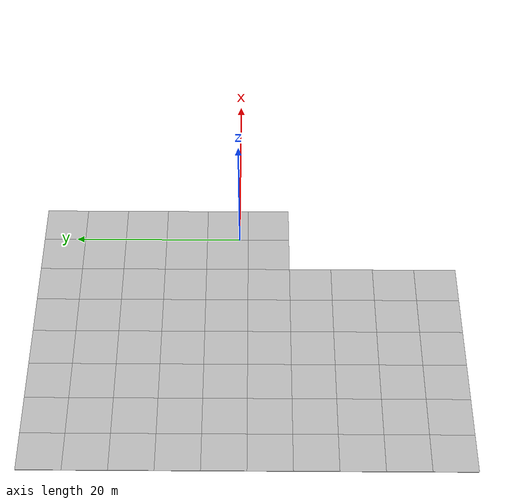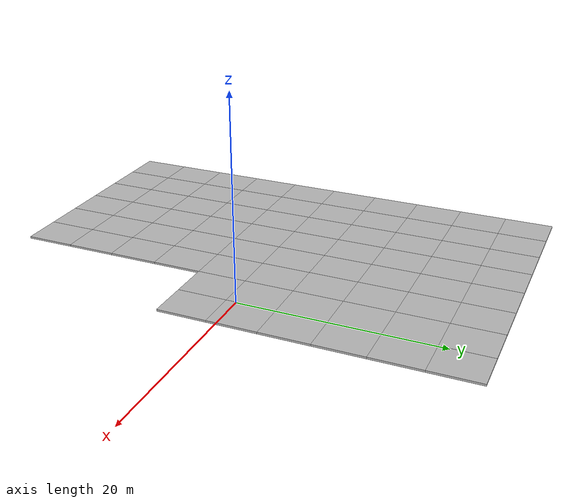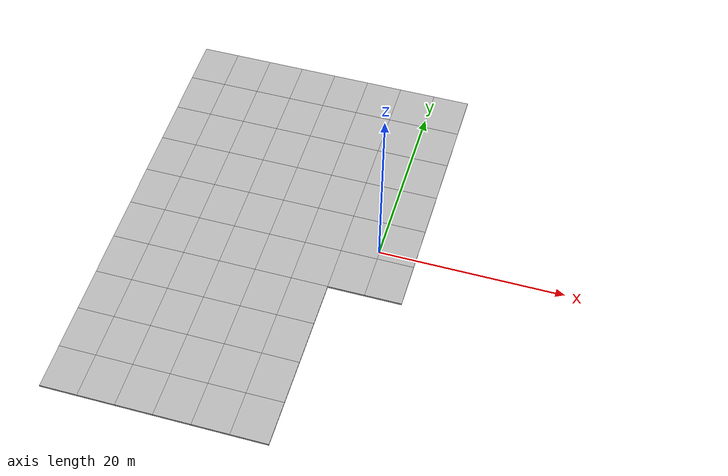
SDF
<sdf version="1.6">
 <world name="default">
  <model name="mud_box">
   <static>1</static>
   <link name="link">
    <collision name="collision"><geometry><box><size>8 10 0.2</size></box></geometry></collision>
    <visual name="visual_1">
     <pose>-2 2.5 0 0 -0 0</pose>
     <cast_shadows>0</cast_shadows>
     <geometry><box><size>4 5 0.2</size></box></geometry>
     <material>
      <script>
       <uri>model://mud_box/materials/scripts</uri>
       <uri>model://mud_box/materials/textures</uri>
       <name>vrc/mud</name>
      </script>
     </material>
    </visual>
    <visual name="visual_2">
     <pose>2 2.5 0 0 -0 0</pose>
     <cast_shadows>0</cast_shadows>
     <geometry><box><size>4 5 0.2</size></box></geometry>
     <material>
      <script>
       <uri>model://mud_box/materials/scripts</uri>
       <uri>model://mud_box/materials/textures</uri>
       <name>vrc/mud</name>
      </script>
     </material>
    </visual>
    <visual name="visual_3">
     <pose>2 -2.5 0 0 -0 0</pose>
     <cast_shadows>0</cast_shadows>
     <geometry><box><size>4 5 0.2</size></box></geometry>
     <material>
      <script>
       <uri>model://mud_box/materials/scripts</uri>
       <uri>model://mud_box/materials/textures</uri>
       <name>vrc/mud</name>
      </script>
     </material>
    </visual>
    <visual name="visual_4">
     <pose>-2 -2.5 0 0 -0 0</pose>
     <cast_shadows>0</cast_shadows>
     <geometry><box><size>4 5 0.2</size></box></geometry>
     <material>
      <script>
       <uri>model://mud_box/materials/scripts</uri>
       <uri>model://mud_box/materials/textures</uri>
       <name>vrc/mud</name>
      </script>
     </material>
    </visual>
   </link>
   <pose>0 19 0 0 -0 0</pose>
  </model>
  <model name="mud_box_clone">
   <static>1</static>
   <link name="link">
    <collision name="collision"><geometry><box><size>8 10 0.2</size></box></geometry></collision>
    <visual name="visual_1">
     <pose>-2 2.5 0 0 -0 0</pose>
     <cast_shadows>0</cast_shadows>
     <geometry><box><size>4 5 0.2</size></box></geometry>
     <material>
      <script>
       <uri>model://mud_box/materials/scripts</uri>
       <uri>model://mud_box/materials/textures</uri>
       <name>vrc/mud</name>
      </script>
     </material>
    </visual>
    <visual name="visual_2">
     <pose>2 2.5 0 0 -0 0</pose>
     <cast_shadows>0</cast_shadows>
     <geometry><box><size>4 5 0.2</size></box></geometry>
     <material>
      <script>
       <uri>model://mud_box/materials/scripts</uri>
       <uri>model://mud_box/materials/textures</uri>
       <name>vrc/mud</name>
      </script>
     </material>
    </visual>
    <visual name="visual_3">
     <pose>2 -2.5 0 0 -0 0</pose>
     <cast_shadows>0</cast_shadows>
     <geometry><box><size>4 5 0.2</size></box></geometry>
     <material>
      <script>
       <uri>model://mud_box/materials/scripts</uri>
       <uri>model://mud_box/materials/textures</uri>
       <name>vrc/mud</name>
      </script>
     </material>
    </visual>
    <visual name="visual_4">
     <pose>-2 -2.5 0 0 -0 0</pose>
     <cast_shadows>0</cast_shadows>
     <geometry><box><size>4 5 0.2</size></box></geometry>
     <material>
      <script>
       <uri>model://mud_box/materials/scripts</uri>
       <uri>model://mud_box/materials/textures</uri>
       <name>vrc/mud</name>
      </script>
     </material>
    </visual>
   </link>
   <pose>-8 19 0 0 -0 0</pose>
  </model>
  <model name="mud_box_clone_0">
   <static>1</static>
   <link name="link">
    <collision name="collision"><geometry><box><size>8 10 0.2</size></box></geometry></collision>
    <visual name="visual_1">
     <pose>-2 2.5 0 0 -0 0</pose>
     <cast_shadows>0</cast_shadows>
     <geometry><box><size>4 5 0.2</size></box></geometry>
     <material>
      <script>
       <uri>model://mud_box/materials/scripts</uri>
       <uri>model://mud_box/materials/textures</uri>
       <name>vrc/mud</name>
      </script>
     </material>
    </visual>
    <visual name="visual_2">
     <pose>2 2.5 0 0 -0 0</pose>
     <cast_shadows>0</cast_shadows>
     <geometry><box><size>4 5 0.2</size></box></geometry>
     <material>
      <script>
       <uri>model://mud_box/materials/scripts</uri>
       <uri>model://mud_box/materials/textures</uri>
       <name>vrc/mud</name>
      </script>
     </material>
    </visual>
    <visual name="visual_3">
     <pose>2 -2.5 0 0 -0 0</pose>
     <cast_shadows>0</cast_shadows>
     <geometry><box><size>4 5 0.2</size></box></geometry>
     <material>
      <script>
       <uri>model://mud_box/materials/scripts</uri>
       <uri>model://mud_box/materials/textures</uri>
       <name>vrc/mud</name>
      </script>
     </material>
    </visual>
    <visual name="visual_4">
     <pose>-2 -2.5 0 0 -0 0</pose>
     <cast_shadows>0</cast_shadows>
     <geometry><box><size>4 5 0.2</size></box></geometry>
     <material>
      <script>
       <uri>model://mud_box/materials/scripts</uri>
       <uri>model://mud_box/materials/textures</uri>
       <name>vrc/mud</name>
      </script>
     </material>
    </visual>
   </link>
   <pose>-16 19 0 0 -0 0</pose>
  </model>
  <model name="mud_box_clone_4">
   <static>1</static>
   <link name="link">
    <collision name="collision"><geometry><box><size>8 10 0.2</size></box></geometry></collision>
    <visual name="visual_1">
     <pose>-2 2.5 0 0 -0 0</pose>
     <cast_shadows>0</cast_shadows>
     <geometry><box><size>4 5 0.2</size></box></geometry>
     <material>
      <script>
       <uri>model://mud_box/materials/scripts</uri>
       <uri>model://mud_box/materials/textures</uri>
       <name>vrc/mud</name>
      </script>
     </material>
    </visual>
    <visual name="visual_2">
     <pose>2 2.5 0 0 -0 0</pose>
     <cast_shadows>0</cast_shadows>
     <geometry><box><size>4 5 0.2</size></box></geometry>
     <material>
      <script>
       <uri>model://mud_box/materials/scripts</uri>
       <uri>model://mud_box/materials/textures</uri>
       <name>vrc/mud</name>
      </script>
     </material>
    </visual>
    <visual name="visual_3">
     <pose>2 -2.5 0 0 -0 0</pose>
     <cast_shadows>0</cast_shadows>
     <geometry><box><size>4 5 0.2</size></box></geometry>
     <material>
      <script>
       <uri>model://mud_box/materials/scripts</uri>
       <uri>model://mud_box/materials/textures</uri>
       <name>vrc/mud</name>
      </script>
     </material>
    </visual>
    <visual name="visual_4">
     <pose>-2 -2.5 0 0 -0 0</pose>
     <cast_shadows>0</cast_shadows>
     <geometry><box><size>4 5 0.2</size></box></geometry>
     <material>
      <script>
       <uri>model://mud_box/materials/scripts</uri>
       <uri>model://mud_box/materials/textures</uri>
       <name>vrc/mud</name>
      </script>
     </material>
    </visual>
   </link>
   <pose>-24 19 0 0 -0 0</pose>
  </model>
  <model name="mud_box_clone_3_clone_2">
   <static>1</static>
   <link name="link">
    <collision name="collision"><geometry><box><size>8 10 0.2</size></box></geometry></collision>
    <visual name="visual_1">
     <pose>-2 2.5 0 0 -0 0</pose>
     <cast_shadows>0</cast_shadows>
     <geometry><box><size>4 5 0.2</size></box></geometry>
     <material>
      <script>
       <uri>model://mud_box/materials/scripts</uri>
       <uri>model://mud_box/materials/textures</uri>
       <name>vrc/mud</name>
      </script>
     </material>
    </visual>
    <visual name="visual_2">
     <pose>2 2.5 0 0 -0 0</pose>
     <cast_shadows>0</cast_shadows>
     <geometry><box><size>4 5 0.2</size></box></geometry>
     <material>
      <script>
       <uri>model://mud_box/materials/scripts</uri>
       <uri>model://mud_box/materials/textures</uri>
       <name>vrc/mud</name>
      </script>
     </material>
    </visual>
    <visual name="visual_3">
     <pose>2 -2.5 0 0 -0 0</pose>
     <cast_shadows>0</cast_shadows>
     <geometry><box><size>4 5 0.2</size></box></geometry>
     <material>
      <script>
       <uri>model://mud_box/materials/scripts</uri>
       <uri>model://mud_box/materials/textures</uri>
       <name>vrc/mud</name>
      </script>
     </material>
    </visual>
    <visual name="visual_4">
     <pose>-2 -2.5 0 0 -0 0</pose>
     <cast_shadows>0</cast_shadows>
     <geometry><box><size>4 5 0.2</size></box></geometry>
     <material>
      <script>
       <uri>model://mud_box/materials/scripts</uri>
       <uri>model://mud_box/materials/textures</uri>
       <name>vrc/mud</name>
      </script>
     </material>
    </visual>
   </link>
   <pose>0 9 0 0 -0 0</pose>
  </model>
  <model name="mud_box_clone_3_clone_3">
   <static>1</static>
   <link name="link">
    <collision name="collision"><geometry><box><size>8 10 0.2</size></box></geometry></collision>
    <visual name="visual_1">
     <pose>-2 2.5 0 0 -0 0</pose>
     <cast_shadows>0</cast_shadows>
     <geometry><box><size>4 5 0.2</size></box></geometry>
     <material>
      <script>
       <uri>model://mud_box/materials/scripts</uri>
       <uri>model://mud_box/materials/textures</uri>
       <name>vrc/mud</name>
      </script>
     </material>
    </visual>
    <visual name="visual_2">
     <pose>2 2.5 0 0 -0 0</pose>
     <cast_shadows>0</cast_shadows>
     <geometry><box><size>4 5 0.2</size></box></geometry>
     <material>
      <script>
       <uri>model://mud_box/materials/scripts</uri>
       <uri>model://mud_box/materials/textures</uri>
       <name>vrc/mud</name>
      </script>
     </material>
    </visual>
    <visual name="visual_3">
     <pose>2 -2.5 0 0 -0 0</pose>
     <cast_shadows>0</cast_shadows>
     <geometry><box><size>4 5 0.2</size></box></geometry>
     <material>
      <script>
       <uri>model://mud_box/materials/scripts</uri>
       <uri>model://mud_box/materials/textures</uri>
       <name>vrc/mud</name>
      </script>
     </material>
    </visual>
    <visual name="visual_4">
     <pose>-2 -2.5 0 0 -0 0</pose>
     <cast_shadows>0</cast_shadows>
     <geometry><box><size>4 5 0.2</size></box></geometry>
     <material>
      <script>
       <uri>model://mud_box/materials/scripts</uri>
       <uri>model://mud_box/materials/textures</uri>
       <name>vrc/mud</name>
      </script>
     </material>
    </visual>
   </link>
   <pose>-8 9 0 0 -0 0</pose>
  </model>
  <model name="mud_box_clone_3_clone_4">
   <static>1</static>
   <link name="link">
    <collision name="collision"><geometry><box><size>8 10 0.2</size></box></geometry></collision>
    <visual name="visual_1">
     <pose>-2 2.5 0 0 -0 0</pose>
     <cast_shadows>0</cast_shadows>
     <geometry><box><size>4 5 0.2</size></box></geometry>
     <material>
      <script>
       <uri>model://mud_box/materials/scripts</uri>
       <uri>model://mud_box/materials/textures</uri>
       <name>vrc/mud</name>
      </script>
     </material>
    </visual>
    <visual name="visual_2">
     <pose>2 2.5 0 0 -0 0</pose>
     <cast_shadows>0</cast_shadows>
     <geometry><box><size>4 5 0.2</size></box></geometry>
     <material>
      <script>
       <uri>model://mud_box/materials/scripts</uri>
       <uri>model://mud_box/materials/textures</uri>
       <name>vrc/mud</name>
      </script>
     </material>
    </visual>
    <visual name="visual_3">
     <pose>2 -2.5 0 0 -0 0</pose>
     <cast_shadows>0</cast_shadows>
     <geometry><box><size>4 5 0.2</size></box></geometry>
     <material>
      <script>
       <uri>model://mud_box/materials/scripts</uri>
       <uri>model://mud_box/materials/textures</uri>
       <name>vrc/mud</name>
      </script>
     </material>
    </visual>
    <visual name="visual_4">
     <pose>-2 -2.5 0 0 -0 0</pose>
     <cast_shadows>0</cast_shadows>
     <geometry><box><size>4 5 0.2</size></box></geometry>
     <material>
      <script>
       <uri>model://mud_box/materials/scripts</uri>
       <uri>model://mud_box/materials/textures</uri>
       <name>vrc/mud</name>
      </script>
     </material>
    </visual>
   </link>
   <pose>-16 9 0 0 -0 0</pose>
  </model>
  <model name="mud_box_clone_3_clone_5">
   <static>1</static>
   <link name="link">
    <collision name="collision"><geometry><box><size>8 10 0.2</size></box></geometry></collision>
    <visual name="visual_1">
     <pose>-2 2.5 0 0 -0 0</pose>
     <cast_shadows>0</cast_shadows>
     <geometry><box><size>4 5 0.2</size></box></geometry>
     <material>
      <script>
       <uri>model://mud_box/materials/scripts</uri>
       <uri>model://mud_box/materials/textures</uri>
       <name>vrc/mud</name>
      </script>
     </material>
    </visual>
    <visual name="visual_2">
     <pose>2 2.5 0 0 -0 0</pose>
     <cast_shadows>0</cast_shadows>
     <geometry><box><size>4 5 0.2</size></box></geometry>
     <material>
      <script>
       <uri>model://mud_box/materials/scripts</uri>
       <uri>model://mud_box/materials/textures</uri>
       <name>vrc/mud</name>
      </script>
     </material>
    </visual>
    <visual name="visual_3">
     <pose>2 -2.5 0 0 -0 0</pose>
     <cast_shadows>0</cast_shadows>
     <geometry><box><size>4 5 0.2</size></box></geometry>
     <material>
      <script>
       <uri>model://mud_box/materials/scripts</uri>
       <uri>model://mud_box/materials/textures</uri>
       <name>vrc/mud</name>
      </script>
     </material>
    </visual>
    <visual name="visual_4">
     <pose>-2 -2.5 0 0 -0 0</pose>
     <cast_shadows>0</cast_shadows>
     <geometry><box><size>4 5 0.2</size></box></geometry>
     <material>
      <script>
       <uri>model://mud_box/materials/scripts</uri>
       <uri>model://mud_box/materials/textures</uri>
       <name>vrc/mud</name>
      </script>
     </material>
    </visual>
   </link>
   <pose>-24 9 0 0 -0 0</pose>
  </model>
  <model name="mud_box_clone_3_clone_2_clone">
   <static>1</static>
   <link name="link">
    <collision name="collision"><geometry><box><size>8 10 0.2</size></box></geometry></collision>
    <visual name="visual_1">
     <pose>-2 2.5 0 0 -0 0</pose>
     <cast_shadows>0</cast_shadows>
     <geometry><box><size>4 5 0.2</size></box></geometry>
     <material>
      <script>
       <uri>model://mud_box/materials/scripts</uri>
       <uri>model://mud_box/materials/textures</uri>
       <name>vrc/mud</name>
      </script>
     </material>
    </visual>
    <visual name="visual_2">
     <pose>2 2.5 0 0 -0 0</pose>
     <cast_shadows>0</cast_shadows>
     <geometry><box><size>4 5 0.2</size></box></geometry>
     <material>
      <script>
       <uri>model://mud_box/materials/scripts</uri>
       <uri>model://mud_box/materials/textures</uri>
       <name>vrc/mud</name>
      </script>
     </material>
    </visual>
    <visual name="visual_3">
     <pose>2 -2.5 0 0 -0 0</pose>
     <cast_shadows>0</cast_shadows>
     <geometry><box><size>4 5 0.2</size></box></geometry>
     <material>
      <script>
       <uri>model://mud_box/materials/scripts</uri>
       <uri>model://mud_box/materials/textures</uri>
       <name>vrc/mud</name>
      </script>
     </material>
    </visual>
    <visual name="visual_4">
     <pose>-2 -2.5 0 0 -0 0</pose>
     <cast_shadows>0</cast_shadows>
     <geometry><box><size>4 5 0.2</size></box></geometry>
     <material>
      <script>
       <uri>model://mud_box/materials/scripts</uri>
       <uri>model://mud_box/materials/textures</uri>
       <name>vrc/mud</name>
      </script>
     </material>
    </visual>
   </link>
   <pose>0 -1 0 0 -0 0</pose>
  </model>
  <model name="mud_box_clone_3_clone_2_clone_0">
   <static>1</static>
   <link name="link">
    <collision name="collision"><geometry><box><size>8 10 0.2</size></box></geometry></collision>
    <visual name="visual_1">
     <pose>-2 2.5 0 0 -0 0</pose>
     <cast_shadows>0</cast_shadows>
     <geometry><box><size>4 5 0.2</size></box></geometry>
     <material>
      <script>
       <uri>model://mud_box/materials/scripts</uri>
       <uri>model://mud_box/materials/textures</uri>
       <name>vrc/mud</name>
      </script>
     </material>
    </visual>
    <visual name="visual_2">
     <pose>2 2.5 0 0 -0 0</pose>
     <cast_shadows>0</cast_shadows>
     <geometry><box><size>4 5 0.2</size></box></geometry>
     <material>
      <script>
       <uri>model://mud_box/materials/scripts</uri>
       <uri>model://mud_box/materials/textures</uri>
       <name>vrc/mud</name>
      </script>
     </material>
    </visual>
    <visual name="visual_3">
     <pose>2 -2.5 0 0 -0 0</pose>
     <cast_shadows>0</cast_shadows>
     <geometry><box><size>4 5 0.2</size></box></geometry>
     <material>
      <script>
       <uri>model://mud_box/materials/scripts</uri>
       <uri>model://mud_box/materials/textures</uri>
       <name>vrc/mud</name>
      </script>
     </material>
    </visual>
    <visual name="visual_4">
     <pose>-2 -2.5 0 0 -0 0</pose>
     <cast_shadows>0</cast_shadows>
     <geometry><box><size>4 5 0.2</size></box></geometry>
     <material>
      <script>
       <uri>model://mud_box/materials/scripts</uri>
       <uri>model://mud_box/materials/textures</uri>
       <name>vrc/mud</name>
      </script>
     </material>
    </visual>
   </link>
   <pose>-8 -1 0 0 -0 0</pose>
  </model>
  <model name="mud_box_clone_3_clone_2_clone_1">
   <static>1</static>
   <link name="link">
    <collision name="collision"><geometry><box><size>8 10 0.2</size></box></geometry></collision>
    <visual name="visual_1">
     <pose>-2 2.5 0 0 -0 0</pose>
     <cast_shadows>0</cast_shadows>
     <geometry><box><size>4 5 0.2</size></box></geometry>
     <material>
      <script>
       <uri>model://mud_box/materials/scripts</uri>
       <uri>model://mud_box/materials/textures</uri>
       <name>vrc/mud</name>
      </script>
     </material>
    </visual>
    <visual name="visual_2">
     <pose>2 2.5 0 0 -0 0</pose>
     <cast_shadows>0</cast_shadows>
     <geometry><box><size>4 5 0.2</size></box></geometry>
     <material>
      <script>
       <uri>model://mud_box/materials/scripts</uri>
       <uri>model://mud_box/materials/textures</uri>
       <name>vrc/mud</name>
      </script>
     </material>
    </visual>
    <visual name="visual_3">
     <pose>2 -2.5 0 0 -0 0</pose>
     <cast_shadows>0</cast_shadows>
     <geometry><box><size>4 5 0.2</size></box></geometry>
     <material>
      <script>
       <uri>model://mud_box/materials/scripts</uri>
       <uri>model://mud_box/materials/textures</uri>
       <name>vrc/mud</name>
      </script>
     </material>
    </visual>
    <visual name="visual_4">
     <pose>-2 -2.5 0 0 -0 0</pose>
     <cast_shadows>0</cast_shadows>
     <geometry><box><size>4 5 0.2</size></box></geometry>
     <material>
      <script>
       <uri>model://mud_box/materials/scripts</uri>
       <uri>model://mud_box/materials/textures</uri>
       <name>vrc/mud</name>
      </script>
     </material>
    </visual>
   </link>
   <pose>-16 -1 0 0 -0 0</pose>
  </model>
  <model name="mud_box_clone_3_clone_2_clone_3">
   <static>1</static>
   <link name="link">
    <collision name="collision"><geometry><box><size>8 10 0.2</size></box></geometry></collision>
    <visual name="visual_1">
     <pose>-2 2.5 0 0 -0 0</pose>
     <cast_shadows>0</cast_shadows>
     <geometry><box><size>4 5 0.2</size></box></geometry>
     <material>
      <script>
       <uri>model://mud_box/materials/scripts</uri>
       <uri>model://mud_box/materials/textures</uri>
       <name>vrc/mud</name>
      </script>
     </material>
    </visual>
    <visual name="visual_2">
     <pose>2 2.5 0 0 -0 0</pose>
     <cast_shadows>0</cast_shadows>
     <geometry><box><size>4 5 0.2</size></box></geometry>
     <material>
      <script>
       <uri>model://mud_box/materials/scripts</uri>
       <uri>model://mud_box/materials/textures</uri>
       <name>vrc/mud</name>
      </script>
     </material>
    </visual>
    <visual name="visual_3">
     <pose>2 -2.5 0 0 -0 0</pose>
     <cast_shadows>0</cast_shadows>
     <geometry><box><size>4 5 0.2</size></box></geometry>
     <material>
      <script>
       <uri>model://mud_box/materials/scripts</uri>
       <uri>model://mud_box/materials/textures</uri>
       <name>vrc/mud</name>
      </script>
     </material>
    </visual>
    <visual name="visual_4">
     <pose>-2 -2.5 0 0 -0 0</pose>
     <cast_shadows>0</cast_shadows>
     <geometry><box><size>4 5 0.2</size></box></geometry>
     <material>
      <script>
       <uri>model://mud_box/materials/scripts</uri>
       <uri>model://mud_box/materials/textures</uri>
       <name>vrc/mud</name>
      </script>
     </material>
    </visual>
   </link>
   <pose>-24 -1 0 0 -0 0</pose>
  </model>
  <model name="mud_box_clone_3_clone_2_clone_clone_0">
   <static>1</static>
   <link name="link">
    <collision name="collision"><geometry><box><size>8 10 0.2</size></box></geometry></collision>
    <visual name="visual_1">
     <pose>-2 2.5 0 0 -0 0</pose>
     <cast_shadows>0</cast_shadows>
     <geometry><box><size>4 5 0.2</size></box></geometry>
     <material>
      <script>
       <uri>model://mud_box/materials/scripts</uri>
       <uri>model://mud_box/materials/textures</uri>
       <name>vrc/mud</name>
      </script>
     </material>
    </visual>
    <visual name="visual_2">
     <pose>2 2.5 0 0 -0 0</pose>
     <cast_shadows>0</cast_shadows>
     <geometry><box><size>4 5 0.2</size></box></geometry>
     <material>
      <script>
       <uri>model://mud_box/materials/scripts</uri>
       <uri>model://mud_box/materials/textures</uri>
       <name>vrc/mud</name>
      </script>
     </material>
    </visual>
    <visual name="visual_3">
     <pose>2 -2.5 0 0 -0 0</pose>
     <cast_shadows>0</cast_shadows>
     <geometry><box><size>4 5 0.2</size></box></geometry>
     <material>
      <script>
       <uri>model://mud_box/materials/scripts</uri>
       <uri>model://mud_box/materials/textures</uri>
       <name>vrc/mud</name>
      </script>
     </material>
    </visual>
    <visual name="visual_4">
     <pose>-2 -2.5 0 0 -0 0</pose>
     <cast_shadows>0</cast_shadows>
     <geometry><box><size>4 5 0.2</size></box></geometry>
     <material>
      <script>
       <uri>model://mud_box/materials/scripts</uri>
       <uri>model://mud_box/materials/textures</uri>
       <name>vrc/mud</name>
      </script>
     </material>
    </visual>
   </link>
   <pose>-8 -11 0 0 -0 0</pose>
  </model>
  <model name="mud_box_clone_3_clone_2_clone_clone_2">
   <static>1</static>
   <link name="link">
    <collision name="collision"><geometry><box><size>8 10 0.2</size></box></geometry></collision>
    <visual name="visual_1">
     <pose>-2 2.5 0 0 -0 0</pose>
     <cast_shadows>0</cast_shadows>
     <geometry><box><size>4 5 0.2</size></box></geometry>
     <material>
      <script>
       <uri>model://mud_box/materials/scripts</uri>
       <uri>model://mud_box/materials/textures</uri>
       <name>vrc/mud</name>
      </script>
     </material>
    </visual>
    <visual name="visual_2">
     <pose>2 2.5 0 0 -0 0</pose>
     <cast_shadows>0</cast_shadows>
     <geometry><box><size>4 5 0.2</size></box></geometry>
     <material>
      <script>
       <uri>model://mud_box/materials/scripts</uri>
       <uri>model://mud_box/materials/textures</uri>
       <name>vrc/mud</name>
      </script>
     </material>
    </visual>
    <visual name="visual_3">
     <pose>2 -2.5 0 0 -0 0</pose>
     <cast_shadows>0</cast_shadows>
     <geometry><box><size>4 5 0.2</size></box></geometry>
     <material>
      <script>
       <uri>model://mud_box/materials/scripts</uri>
       <uri>model://mud_box/materials/textures</uri>
       <name>vrc/mud</name>
      </script>
     </material>
    </visual>
    <visual name="visual_4">
     <pose>-2 -2.5 0 0 -0 0</pose>
     <cast_shadows>0</cast_shadows>
     <geometry><box><size>4 5 0.2</size></box></geometry>
     <material>
      <script>
       <uri>model://mud_box/materials/scripts</uri>
       <uri>model://mud_box/materials/textures</uri>
       <name>vrc/mud</name>
      </script>
     </material>
    </visual>
   </link>
   <pose>-8 -21 0 0 -0 0</pose>
  </model>
  <model name="mud_box_clone_3_clone_2_clone_clone_3">
   <static>1</static>
   <link name="link">
    <collision name="collision"><geometry><box><size>8 10 0.2</size></box></geometry></collision>
    <visual name="visual_1">
     <pose>-2 2.5 0 0 -0 0</pose>
     <cast_shadows>0</cast_shadows>
     <geometry><box><size>4 5 0.2</size></box></geometry>
     <material>
      <script>
       <uri>model://mud_box/materials/scripts</uri>
       <uri>model://mud_box/materials/textures</uri>
       <name>vrc/mud</name>
      </script>
     </material>
    </visual>
    <visual name="visual_2">
     <pose>2 2.5 0 0 -0 0</pose>
     <cast_shadows>0</cast_shadows>
     <geometry><box><size>4 5 0.2</size></box></geometry>
     <material>
      <script>
       <uri>model://mud_box/materials/scripts</uri>
       <uri>model://mud_box/materials/textures</uri>
       <name>vrc/mud</name>
      </script>
     </material>
    </visual>
    <visual name="visual_3">
     <pose>2 -2.5 0 0 -0 0</pose>
     <cast_shadows>0</cast_shadows>
     <geometry><box><size>4 5 0.2</size></box></geometry>
     <material>
      <script>
       <uri>model://mud_box/materials/scripts</uri>
       <uri>model://mud_box/materials/textures</uri>
       <name>vrc/mud</name>
      </script>
     </material>
    </visual>
    <visual name="visual_4">
     <pose>-2 -2.5 0 0 -0 0</pose>
     <cast_shadows>0</cast_shadows>
     <geometry><box><size>4 5 0.2</size></box></geometry>
     <material>
      <script>
       <uri>model://mud_box/materials/scripts</uri>
       <uri>model://mud_box/materials/textures</uri>
       <name>vrc/mud</name>
      </script>
     </material>
    </visual>
   </link>
   <pose>-16 -11 0 0 -0 0</pose>
  </model>
  <model name="mud_box_clone_3_clone_2_clone_clone_4">
   <static>1</static>
   <link name="link">
    <collision name="collision"><geometry><box><size>8 10 0.2</size></box></geometry></collision>
    <visual name="visual_1">
     <pose>-2 2.5 0 0 -0 0</pose>
     <cast_shadows>0</cast_shadows>
     <geometry><box><size>4 5 0.2</size></box></geometry>
     <material>
      <script>
       <uri>model://mud_box/materials/scripts</uri>
       <uri>model://mud_box/materials/textures</uri>
       <name>vrc/mud</name>
      </script>
     </material>
    </visual>
    <visual name="visual_2">
     <pose>2 2.5 0 0 -0 0</pose>
     <cast_shadows>0</cast_shadows>
     <geometry><box><size>4 5 0.2</size></box></geometry>
     <material>
      <script>
       <uri>model://mud_box/materials/scripts</uri>
       <uri>model://mud_box/materials/textures</uri>
       <name>vrc/mud</name>
      </script>
     </material>
    </visual>
    <visual name="visual_3">
     <pose>2 -2.5 0 0 -0 0</pose>
     <cast_shadows>0</cast_shadows>
     <geometry><box><size>4 5 0.2</size></box></geometry>
     <material>
      <script>
       <uri>model://mud_box/materials/scripts</uri>
       <uri>model://mud_box/materials/textures</uri>
       <name>vrc/mud</name>
      </script>
     </material>
    </visual>
    <visual name="visual_4">
     <pose>-2 -2.5 0 0 -0 0</pose>
     <cast_shadows>0</cast_shadows>
     <geometry><box><size>4 5 0.2</size></box></geometry>
     <material>
      <script>
       <uri>model://mud_box/materials/scripts</uri>
       <uri>model://mud_box/materials/textures</uri>
       <name>vrc/mud</name>
      </script>
     </material>
    </visual>
   </link>
   <pose>-24 -11 0 0 -0 0</pose>
  </model>
  <model name="mud_box_clone_3_clone_2_clone_clone_5">
   <static>1</static>
   <link name="link">
    <collision name="collision"><geometry><box><size>8 10 0.2</size></box></geometry></collision>
    <visual name="visual_1">
     <pose>-2 2.5 0 0 -0 0</pose>
     <cast_shadows>0</cast_shadows>
     <geometry><box><size>4 5 0.2</size></box></geometry>
     <material>
      <script>
       <uri>model://mud_box/materials/scripts</uri>
       <uri>model://mud_box/materials/textures</uri>
       <name>vrc/mud</name>
      </script>
     </material>
    </visual>
    <visual name="visual_2">
     <pose>2 2.5 0 0 -0 0</pose>
     <cast_shadows>0</cast_shadows>
     <geometry><box><size>4 5 0.2</size></box></geometry>
     <material>
      <script>
       <uri>model://mud_box/materials/scripts</uri>
       <uri>model://mud_box/materials/textures</uri>
       <name>vrc/mud</name>
      </script>
     </material>
    </visual>
    <visual name="visual_3">
     <pose>2 -2.5 0 0 -0 0</pose>
     <cast_shadows>0</cast_shadows>
     <geometry><box><size>4 5 0.2</size></box></geometry>
     <material>
      <script>
       <uri>model://mud_box/materials/scripts</uri>
       <uri>model://mud_box/materials/textures</uri>
       <name>vrc/mud</name>
      </script>
     </material>
    </visual>
    <visual name="visual_4">
     <pose>-2 -2.5 0 0 -0 0</pose>
     <cast_shadows>0</cast_shadows>
     <geometry><box><size>4 5 0.2</size></box></geometry>
     <material>
      <script>
       <uri>model://mud_box/materials/scripts</uri>
       <uri>model://mud_box/materials/textures</uri>
       <name>vrc/mud</name>
      </script>
     </material>
    </visual>
   </link>
   <pose>-24 -21 0 0 -0 0</pose>
  </model>
  <model name="mud_box_clone_3_clone_2_clone_clone_6">
   <static>1</static>
   <link name="link">
    <collision name="collision"><geometry><box><size>8 10 0.2</size></box></geometry></collision>
    <visual name="visual_1">
     <pose>-2 2.5 0 0 -0 0</pose>
     <cast_shadows>0</cast_shadows>
     <geometry><box><size>4 5 0.2</size></box></geometry>
     <material>
      <script>
       <uri>model://mud_box/materials/scripts</uri>
       <uri>model://mud_box/materials/textures</uri>
       <name>vrc/mud</name>
      </script>
     </material>
    </visual>
    <visual name="visual_2">
     <pose>2 2.5 0 0 -0 0</pose>
     <cast_shadows>0</cast_shadows>
     <geometry><box><size>4 5 0.2</size></box></geometry>
     <material>
      <script>
       <uri>model://mud_box/materials/scripts</uri>
       <uri>model://mud_box/materials/textures</uri>
       <name>vrc/mud</name>
      </script>
     </material>
    </visual>
    <visual name="visual_3">
     <pose>2 -2.5 0 0 -0 0</pose>
     <cast_shadows>0</cast_shadows>
     <geometry><box><size>4 5 0.2</size></box></geometry>
     <material>
      <script>
       <uri>model://mud_box/materials/scripts</uri>
       <uri>model://mud_box/materials/textures</uri>
       <name>vrc/mud</name>
      </script>
     </material>
    </visual>
    <visual name="visual_4">
     <pose>-2 -2.5 0 0 -0 0</pose>
     <cast_shadows>0</cast_shadows>
     <geometry><box><size>4 5 0.2</size></box></geometry>
     <material>
      <script>
       <uri>model://mud_box/materials/scripts</uri>
       <uri>model://mud_box/materials/textures</uri>
       <name>vrc/mud</name>
      </script>
     </material>
    </visual>
   </link>
   <pose>-16 -21 0 0 -0 0</pose>
  </model>
 </world>
</sdf>
